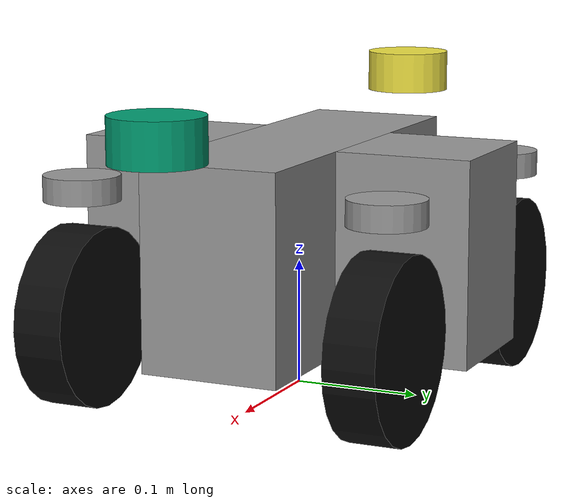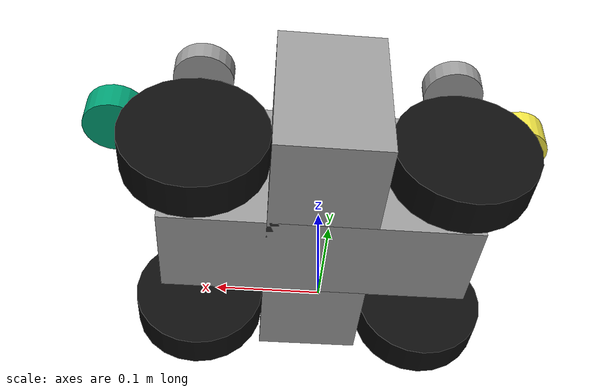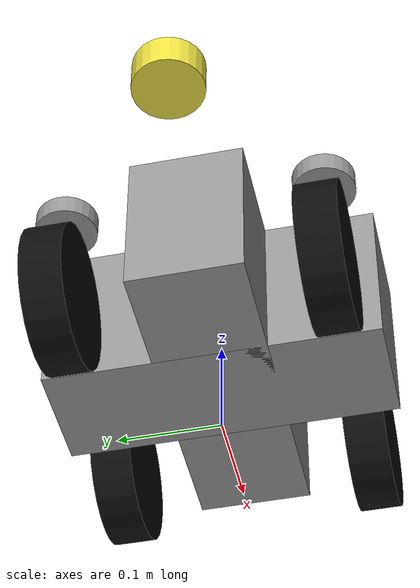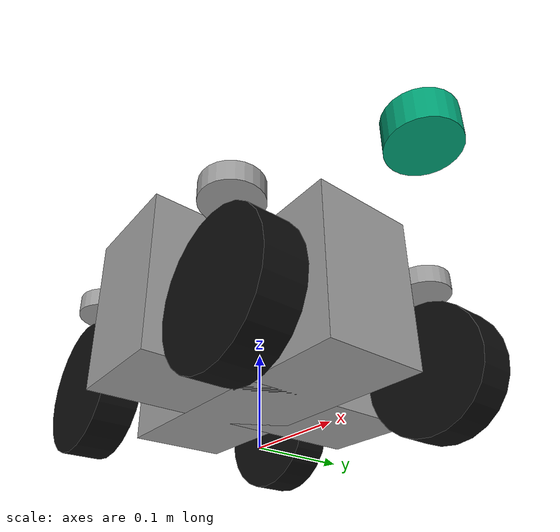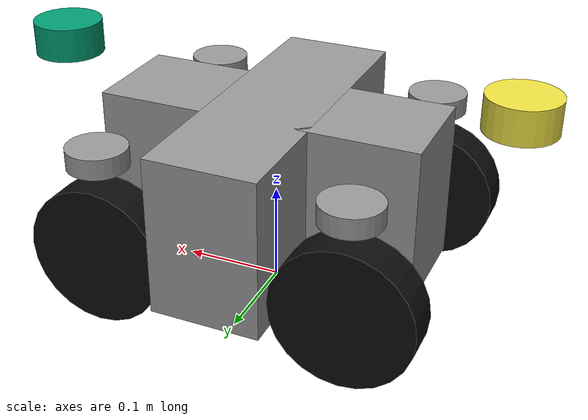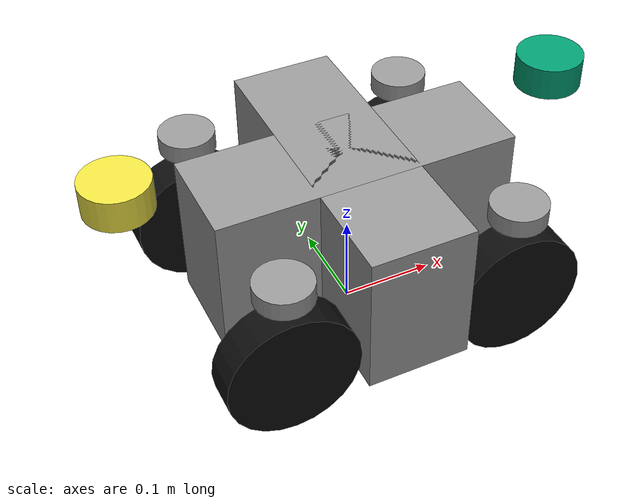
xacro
<?xml version="1.0"?>
<robot name="fwdsroverX40A" xmlns:xacro="http://ros.org/wiki/xacro">

  <!-- ===================== Common params ===================== -->
  <xacro:property name="base_length" value="0.324"/>
  <xacro:property name="base_width"  value="0.110"/>
  <xacro:property name="base_height" value="0.159"/>
  <xacro:property name="base_mass"   value="16.4"/>

  <xacro:property name="wheel_radius" value="0.07"/>
  <xacro:property name="wheel_width"  value="0.04"/>
  <xacro:property name="steer_limit_rad" value="3.0543"/> <!-- ≒175deg -->

  <!-- ===================== Helpers ===================== -->
  <!-- 直方体近似の慣性を入れる簡易マクロ -->
  <xacro:macro name="inertial_box" params="mass x y z">
    <inertial>
      <mass value="${mass}"/>
      <!-- 粗い近似（I = m/12 * diag(y^2+z^2, x^2+z^2, x^2+y^2)) -->
      <inertia
        ixx="${mass*(y*y+z*z)/12.0}"
        iyy="${mass*(x*x+z*z)/12.0}"
        izz="${mass*(x*x+y*y)/12.0}"
        ixy="0" ixz="0" iyz="0"/>
    </inertial>
  </xacro:macro>

  <!-- 車輪モジュール：ステア中間リンク + 車輪リンク + 各ジョイント -->
  <!-- parent: 親リンク（通常 base_link） -->
  <!-- steer_link, wheel_link, steer_joint, wheel_joint: 名前 -->
  <!-- xyz: 親リンクからの取付位置（車軸中心） -->
  <!-- wheel_radius/width, steer_limit: 寸法・可動域（既定あり） -->
  <!-- steer_mass, wheel_mass: 質量（既定あり） -->
  <xacro:macro name="wheel_module"
               params="parent steer_link wheel_link steer_joint wheel_joint
                       xyz:='0 0 0'
                       wheel_radius:='${wheel_radius}'
                       wheel_width:='${wheel_width}'
                       steer_limit:='${steer_limit_rad}'
                       steer_mass:='2.0'
                       wheel_mass:='1.0'">

    <!-- ステア中間リンク -->
    <link name="${steer_link}">
      <xacro:inertial_box mass="${steer_mass}" x="0.02" y="0.02" z="0.02"/>
      <visual>
        <origin xyz="0 0 0"/>
        <geometry><cylinder radius="0.03" length="0.02"/></geometry>
        <material name="gray"><color rgba="0.6 0.6 0.6 1"/></material>
      </visual>
    </link>

    <!-- 親 → ステア回転（Z軸） -->
    <joint name="${steer_joint}" type="revolute">
      <parent link="${parent}"/>
      <child  link="${steer_link}"/>
      <origin xyz="${xyz}" rpy="0 0 0"/>
      <axis xyz="0 0 1"/>
      <limit lower="-${steer_limit}" upper="${steer_limit}" effort="10" velocity="1.5"/>
    </joint>

    <!-- 駆動ホイール -->
    <link name="${wheel_link}">
      <inertial>
        <origin xyz="0 0 0"/>
        <mass value="${wheel_mass}"/>
        <!-- 円柱近似の慣性（半径=wheel_radius, 長さ=wheel_width） -->
        <inertia
          ixx="0"
          iyy="0"
          izz="0"
          ixy="0" ixz="0" iyz="0"/>
      </inertial>
      <visual>
        <origin xyz="0 0 0" rpy="1.5708 0 0"/>
        <geometry><cylinder radius="${wheel_radius}" length="${wheel_width}"/></geometry>
        <material name="black"><color rgba="0.05 0.05 0.05 1"/></material>
      </visual>
      <collision>
        <origin xyz="0 0 0" rpy="1.5708 0 0"/>
        <geometry><cylinder radius="${wheel_radius}" length="${wheel_width}"/></geometry>
      </collision>
    </link>

    <!-- ステア → ホイール回転 -->
    <joint name="${wheel_joint}" type="continuous">
      <parent link="${steer_link}"/>
      <child  link="${wheel_link}"/>
      <origin xyz="0 0 -0.1" rpy="0 0 0"/>
      <axis xyz="0 1 0"/>
      <dynamics friction="0.0" damping="0.0"/>
    </joint>
  </xacro:macro>

  <!-- ===================== Base frames ===================== -->
  <link name="base_footprint"/>
  <link name="base_link">
    <origin xyz="0 0 0"/>
    <xacro:inertial_box mass="${base_mass}" x="${base_length}" y="${base_width}" z="${base_height}"/>
    <visual>
      <origin xyz="0 0 ${base_height/2.0}"/>
      <geometry>
      	<box size="${base_length} ${base_width} ${base_height}"/>
      </geometry>
      <material name="gray"><color rgba="0.6 0.6 0.6 1"/></material>
    </visual>
    <visual>
      <origin xyz="0 0 ${base_height/2.0}"/>
      <geometry>
      	<box size="${base_width} ${base_length} ${base_height}"/>
      </geometry>
      <material name="gray"><color rgba="0.6 0.6 0.6 1"/></material>
    </visual>
    <collision>
      <origin xyz="0 0 ${base_height/2.0}"/>
      <geometry><box size="${base_length} ${base_width} ${base_height}"/></geometry>
    </collision>
  </link>

  <joint name="base_joint" type="fixed">
    <parent link="base_footprint"/>
    <child  link="base_link"/>
    <origin xyz="0 0 0.04" rpy="0 0 0"/>
  </joint>

  <!-- ===================== Sensors ===================== -->
  <link name="f_laser_link">
    <visual><origin xyz="0 0 0"/><geometry><cylinder radius="0.035" length="0.034"/></geometry></visual>
  </link>
  <joint name="f_laser_joint" type="fixed">
    <parent link="base_link"/>
    <child  link="f_laser_link"/>
    <origin xyz="${ base_length/2.0 + 0.072 } 0 ${base_height + 0.03}" rpy="0 0 0"/>
  </joint>

  <link name="r_laser_link">
    <visual><origin xyz="0 0 0"/><geometry><cylinder radius="0.035" length="0.034"/></geometry></visual>
  </link>
  <joint name="r_laser_joint" type="fixed">
    <parent link="base_link"/>
    <child  link="r_laser_link"/>
    <origin xyz="${ -base_length/2.0 - 0.072 } 0 ${base_height + 0.03}" rpy="0 0 3.14159"/>
  </joint>

  <!-- ===================== Wheels (instantiate 4 modules) ===================== -->
  <!-- ホイールベース/トレッド -->
  <xacro:property name="x_off" value="0.125"/>
  <xacro:property name="y_off" value="0.125"/>
  <xacro:property name="axle_height" value="0.13"/>

  <!-- FL -->
  <xacro:wheel_module parent="base_link"
                      steer_link="fl_steer" wheel_link="fl_wheel"
                      steer_joint="fl_steer_joint" wheel_joint="fl_wheel_joint"
                      xyz="${x_off} ${y_off} ${axle_height}"/>

  <!-- FR -->
  <xacro:wheel_module parent="base_link"
                      steer_link="fr_steer" wheel_link="fr_wheel"
                      steer_joint="fr_steer_joint" wheel_joint="fr_wheel_joint"
                      xyz="${x_off} ${-y_off} ${axle_height}"/>

  <!-- RL -->
  <xacro:wheel_module parent="base_link"
                      steer_link="rl_steer" wheel_link="rl_wheel"
                      steer_joint="rl_steer_joint" wheel_joint="rl_wheel_joint"
                      xyz="${-x_off} ${y_off} ${axle_height}"/>

  <!-- RR -->
  <xacro:wheel_module parent="base_link"
                      steer_link="rr_steer" wheel_link="rr_wheel"
                      steer_joint="rr_steer_joint" wheel_joint="rr_wheel_joint"
                      xyz="${-x_off} ${-y_off} ${axle_height}"/>

</robot>
